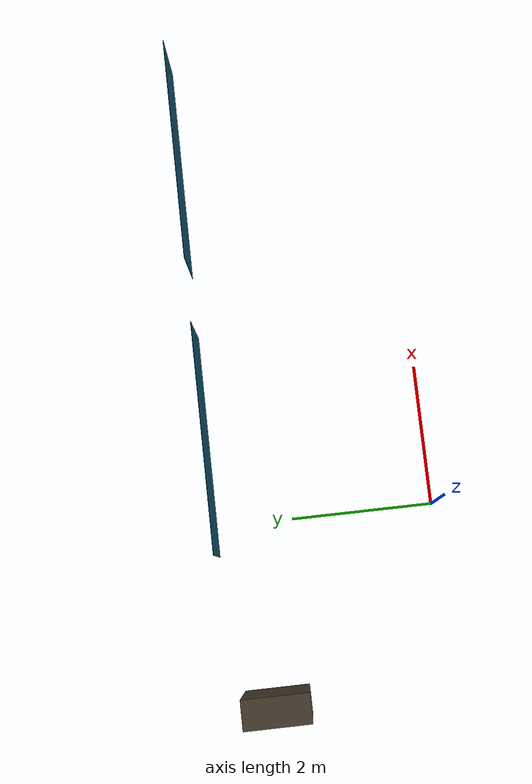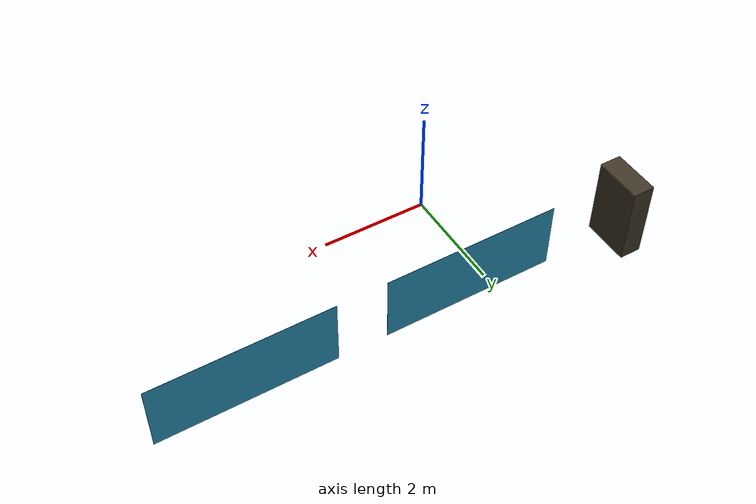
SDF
<?xml version="1.0" ?>
<sdf version="1.6">
  <model name="L1_workshop">
    <static>true</static>
    <link name="link">
      <collision name="collision">
        <geometry>
          <mesh>
            <uri>model://L1_workshop/meshes/L1_workshop.stl</uri>
            <scale>0.001 0.001 0.001</scale>
          </mesh>
        </geometry>
      </collision>
      <visual name="visual">
        <geometry>
          <mesh>
            <uri>model://L1_workshop/meshes/L1_workshop.stl</uri>
            <scale>0.001 0.001 0.001</scale>
          </mesh>
        </geometry>
      </visual>
    </link>
  </model>
</sdf>
<scale>0.1 0.1 0.1</scale>
